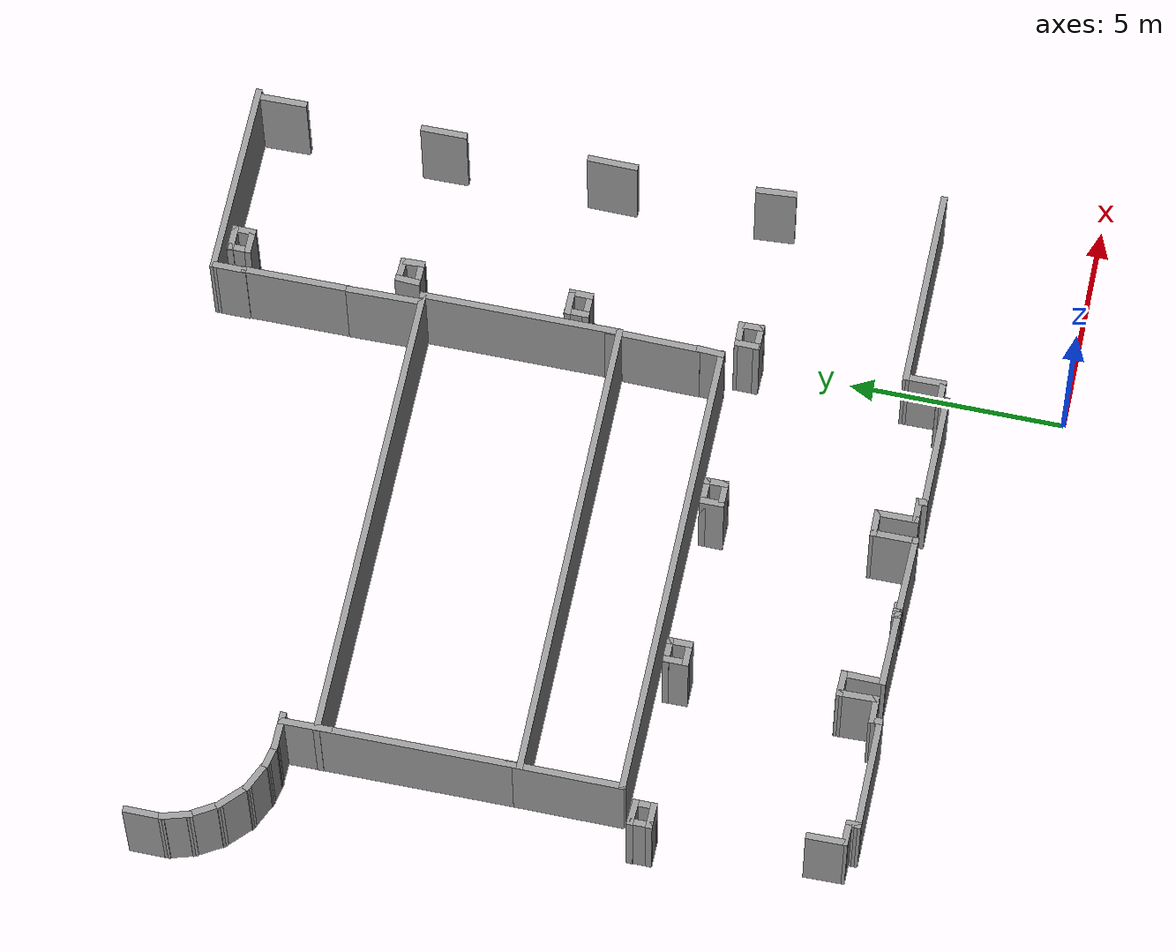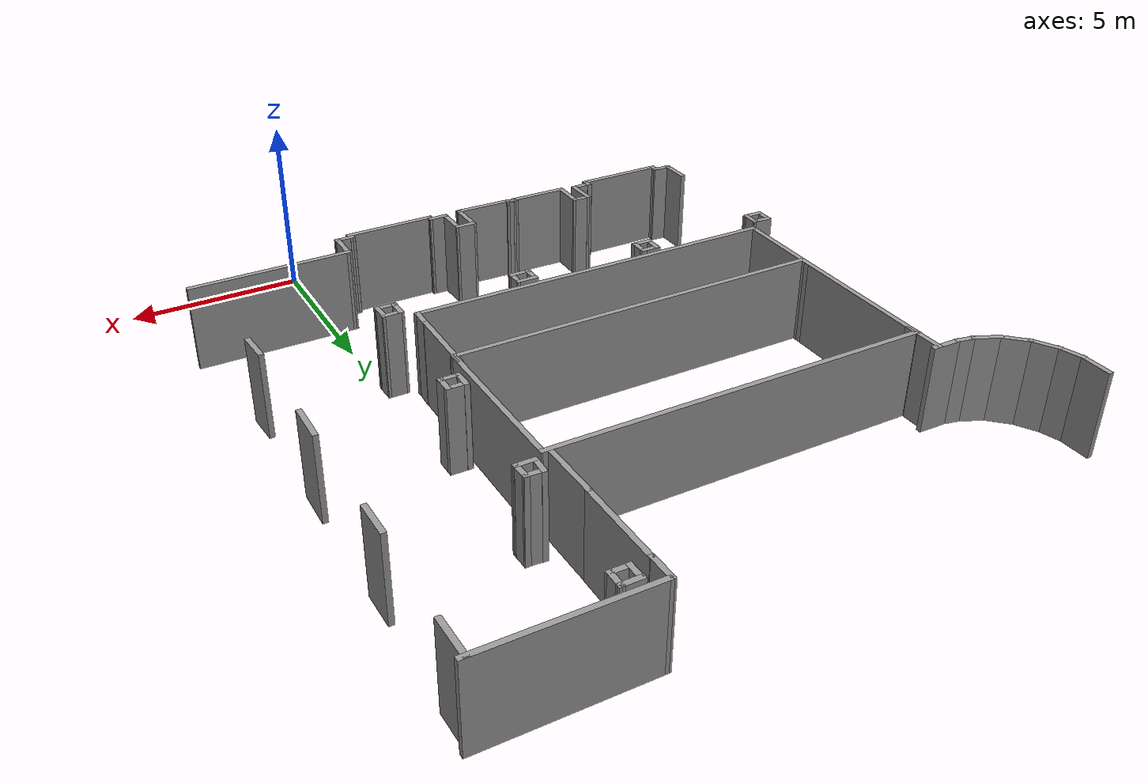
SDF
<sdf version="1.7">
 <model name="TD1-Mapa">
  <pose>-6.249136 -5.50363 0 0 -0 0</pose>
  <link name="Wall_366">
   <collision name="Wall_366_Collision">
    <geometry><box><size>0.9478333 0.15 2.5</size></box></geometry>
    <pose>0 0 1.25 0 -0 0</pose>
   </collision>
   <visual name="Wall_366_Visual">
    <pose>0 0 1.25 0 -0 0</pose>
    <geometry><box><size>0.9478333 0.15 2.5</size></box></geometry>
    <material>
     <script><uri>file://media/materials/scripts/gazebo.material</uri><name>Gazebo/Grey</name></script>
     <ambient>1 1 1 1</ambient>
    </material>
    <meta><layer>0</layer></meta>
   </visual>
   <pose>-5.658134 8.755935 0 0 -0 -1.555137</pose>
  </link>
  <link name="Wall_367">
   <collision name="Wall_367_Collision">
    <geometry><box><size>0.6051373 0.15 2.5</size></box></geometry>
    <pose>0 0 1.25 0 -0 0</pose>
   </collision>
   <visual name="Wall_367_Visual">
    <pose>0 0 1.25 0 -0 0</pose>
    <geometry><box><size>0.6051373 0.15 2.5</size></box></geometry>
    <material>
     <script><uri>file://media/materials/scripts/gazebo.material</uri><name>Gazebo/Grey</name></script>
     <ambient>1 1 1 1</ambient>
    </material>
    <meta><layer>0</layer></meta>
   </visual>
   <pose>-5.42443 8.353933 0 0 -0 -0.0136393</pose>
  </link>
  <link name="Wall_411">
   <collision name="Wall_411_Collision">
    <geometry><box><size>0.9492393 0.15 2.5</size></box></geometry>
    <pose>0 0 1.25 0 -0 0</pose>
   </collision>
   <visual name="Wall_411_Visual">
    <pose>0 0 1.25 0 -0 0</pose>
    <geometry><box><size>0.9492393 0.15 2.5</size></box></geometry>
    <material>
     <script><uri>file://media/materials/scripts/gazebo.material</uri><name>Gazebo/Grey</name></script>
     <ambient>1 1 1 1</ambient>
    </material>
    <meta><layer>0</layer></meta>
   </visual>
   <pose>-8.141139 23.61443 0 0 -0 -1.57083</pose>
  </link>
  <link name="Wall_413">
   <collision name="Wall_413_Collision">
    <geometry><box><size>0.7547323 0.15 2.5</size></box></geometry>
    <pose>0 0 1.25 0 -0 0</pose>
   </collision>
   <visual name="Wall_413_Visual">
    <pose>0 0 1.25 0 -0 0</pose>
    <geometry><box><size>0.7547323 0.15 2.5</size></box></geometry>
    <material>
     <script><uri>file://media/materials/scripts/gazebo.material</uri><name>Gazebo/Grey</name></script>
     <ambient>1 1 1 1</ambient>
    </material>
    <meta><layer>0</layer></meta>
   </visual>
   <pose>-8.056038 22.92463 0 0 -0 -1.285435</pose>
  </link>
  <link name="Wall_414">
   <collision name="Wall_414_Collision">
    <geometry><box><size>0.8370393 0.15 2.5</size></box></geometry>
    <pose>0 0 1.25 0 -0 0</pose>
   </collision>
   <visual name="Wall_414_Visual">
    <pose>0 0 1.25 0 -0 0</pose>
    <geometry><box><size>0.8370393 0.15 2.5</size></box></geometry>
    <material>
     <script><uri>file://media/materials/scripts/gazebo.material</uri><name>Gazebo/Grey</name></script>
     <ambient>1 1 1 1</ambient>
    </material>
    <meta><layer>0</layer></meta>
   </visual>
   <pose>-7.796535 22.33853 0 0 -0 -1.038239</pose>
  </link>
  <link name="Wall_415">
   <collision name="Wall_415_Collision">
    <geometry><box><size>0.8901333 0.15 2.5</size></box></geometry>
    <pose>0 0 1.25 0 -0 0</pose>
   </collision>
   <visual name="Wall_415_Visual">
    <pose>0 0 1.25 0 -0 0</pose>
    <geometry><box><size>0.8901333 0.15 2.5</size></box></geometry>
    <material>
     <script><uri>file://media/materials/scripts/gazebo.material</uri><name>Gazebo/Grey</name></script>
     <ambient>1 1 1 1</ambient>
    </material>
    <meta><layer>0</layer></meta>
   </visual>
   <pose>-7.355232 21.78623 0 0 -0 -0.7651393</pose>
  </link>
  <link name="Wall_416">
   <collision name="Wall_416_Collision">
    <geometry><box><size>0.83333 0.15 2.5</size></box></geometry>
    <pose>0 0 1.25 0 -0 0</pose>
   </collision>
   <visual name="Wall_416_Visual">
    <pose>0 0 1.25 0 -0 0</pose>
    <geometry><box><size>0.83333 0.15 2.5</size></box></geometry>
    <material>
     <script><uri>file://media/materials/scripts/gazebo.material</uri><name>Gazebo/Grey</name></script>
     <ambient>1 1 1 1</ambient>
    </material>
    <meta><layer>0</layer></meta>
   </visual>
   <pose>-6.779132 21.38453 0 0 -0 -0.43193433</pose>
  </link>
  <link name="Wall_417">
   <collision name="Wall_417_Collision">
    <geometry><box><size>0.6092313 0.15 2.5</size></box></geometry>
    <pose>0 0 1.25 0 -0 0</pose>
   </collision>
   <visual name="Wall_417_Visual">
    <pose>0 0 1.25 0 -0 0</pose>
    <geometry><box><size>0.6092313 0.15 2.5</size></box></geometry>
    <material>
     <script><uri>file://media/materials/scripts/gazebo.material</uri><name>Gazebo/Grey</name></script>
     <ambient>1 1 1 1</ambient>
    </material>
    <meta><layer>0</layer></meta>
   </visual>
   <pose>-6.245331 21.19163 0 0 -0 -0.2086383</pose>
  </link>
  <link name="Wall_418">
   <collision name="Wall_418_Collision">
    <geometry><box><size>0.900539 0.15 2.5</size></box></geometry>
    <pose>0 0 1.25 0 -0 0</pose>
   </collision>
   <visual name="Wall_418_Visual">
    <pose>0 0 1.25 0 -0 0</pose>
    <geometry><box><size>0.900539 0.15 2.5</size></box></geometry>
    <material>
     <script><uri>file://media/materials/scripts/gazebo.material</uri><name>Gazebo/Grey</name></script>
     <ambient>1 1 1 1</ambient>
    </material>
    <meta><layer>0</layer></meta>
   </visual>
   <pose>-5.645432 21.13873 0 0 -0 -0.0140383</pose>
  </link>
  <link name="Wall_420">
   <collision name="Wall_420_Collision">
    <geometry><box><size>0.6119373 0.15 2.5</size></box></geometry>
    <pose>0 0 1.25 0 -0 0</pose>
   </collision>
   <visual name="Wall_420_Visual">
    <pose>0 0 1.25 0 -0 0</pose>
    <geometry><box><size>0.6119373 0.15 2.5</size></box></geometry>
    <material>
     <script><uri>file://media/materials/scripts/gazebo.material</uri><name>Gazebo/Grey</name></script>
     <ambient>1 1 1 1</ambient>
    </material>
    <meta><layer>0</layer></meta>
   </visual>
   <pose>-5.913039 13.06943 0 0 -0 -0.0525383</pose>
  </link>
  <link name="Wall_421">
   <collision name="Wall_421_Collision">
    <geometry><box><size>0.5633313 0.15 2.5</size></box></geometry>
    <pose>0 0 1.25 0 -0 0</pose>
   </collision>
   <visual name="Wall_421_Visual">
    <pose>0 0 1.25 0 -0 0</pose>
    <geometry><box><size>0.5633313 0.15 2.5</size></box></geometry>
    <material>
     <script><uri>file://media/materials/scripts/gazebo.material</uri><name>Gazebo/Grey</name></script>
     <ambient>1 1 1 1</ambient>
    </material>
    <meta><layer>0</layer></meta>
   </visual>
   <pose>-5.682132 12.85063 0 0 -0 -1.57083</pose>
  </link>
  <link name="Wall_422">
   <collision name="Wall_422_Collision">
    <geometry><box><size>0.6058393 0.15 2.5</size></box></geometry>
    <pose>0 0 1.25 0 -0 0</pose>
   </collision>
   <visual name="Wall_422_Visual">
    <pose>0 0 1.25 0 -0 0</pose>
    <geometry><box><size>0.6058393 0.15 2.5</size></box></geometry>
    <material>
     <script><uri>file://media/materials/scripts/gazebo.material</uri><name>Gazebo/Grey</name></script>
     <ambient>1 1 1 1</ambient>
    </material>
    <meta><layer>0</layer></meta>
   </visual>
   <pose>-5.910035 12.64693 0 0 -0 3.128236</pose>
  </link>
  <link name="Wall_423">
   <collision name="Wall_423_Collision">
    <geometry><box><size>0.5208313 0.15 2.5</size></box></geometry>
    <pose>0 0 1.25 0 -0 0</pose>
   </collision>
   <visual name="Wall_423_Visual">
    <pose>0 0 1.25 0 -0 0</pose>
    <geometry><box><size>0.5208313 0.15 2.5</size></box></geometry>
    <material>
     <script><uri>file://media/materials/scripts/gazebo.material</uri><name>Gazebo/Grey</name></script>
     <ambient>1 1 1 1</ambient>
    </material>
    <meta><layer>0</layer></meta>
   </visual>
   <pose>-6.134934 12.83543 0 0 -0 1.587139</pose>
  </link>
  <link name="Wall_425">
   <collision name="Wall_425_Collision">
    <geometry><box><size>0.5999343 0.15 2.5</size></box></geometry>
    <pose>0 0 1.25 0 -0 0</pose>
   </collision>
   <visual name="Wall_425_Visual">
    <pose>0 0 1.25 0 -0 0</pose>
    <geometry><box><size>0.5999343 0.15 2.5</size></box></geometry>
    <material>
     <script><uri>file://media/materials/scripts/gazebo.material</uri><name>Gazebo/Grey</name></script>
     <ambient>1 1 1 1</ambient>
    </material>
    <meta><layer>0</layer></meta>
   </visual>
   <pose>-1.986632 13.08763 0 0 -0 0</pose>
  </link>
  <link name="Wall_426">
   <collision name="Wall_426_Collision">
    <geometry><box><size>0.5937343 0.15 2.5</size></box></geometry>
    <pose>0 0 1.25 0 -0 0</pose>
   </collision>
   <visual name="Wall_426_Visual">
    <pose>0 0 1.25 0 -0 0</pose>
    <geometry><box><size>0.5937343 0.15 2.5</size></box></geometry>
    <material>
     <script><uri>file://media/materials/scripts/gazebo.material</uri><name>Gazebo/Grey</name></script>
     <ambient>1 1 1 1</ambient>
    </material>
    <meta><layer>0</layer></meta>
   </visual>
   <pose>-1.761733 12.86583 0 0 -0 -1.57083</pose>
  </link>
  <link name="Wall_427">
   <collision name="Wall_427_Collision">
    <geometry><box><size>0.5937303 0.15 2.5</size></box></geometry>
    <pose>0 0 1.25 0 -0 0</pose>
   </collision>
   <visual name="Wall_427_Visual">
    <pose>0 0 1.25 0 -0 0</pose>
    <geometry><box><size>0.5937303 0.15 2.5</size></box></geometry>
    <material>
     <script><uri>file://media/materials/scripts/gazebo.material</uri><name>Gazebo/Grey</name></script>
     <ambient>1 1 1 1</ambient>
    </material>
    <meta><layer>0</layer></meta>
   </visual>
   <pose>-1.983538 12.64393 0 0 -0 3.141539</pose>
  </link>
  <link name="Wall_428">
   <collision name="Wall_428_Collision">
    <geometry><box><size>0.5876323 0.15 2.5</size></box></geometry>
    <pose>0 0 1.25 0 -0 0</pose>
   </collision>
   <visual name="Wall_428_Visual">
    <pose>0 0 1.25 0 -0 0</pose>
    <geometry><box><size>0.5876323 0.15 2.5</size></box></geometry>
    <material>
     <script><uri>file://media/materials/scripts/gazebo.material</uri><name>Gazebo/Grey</name></script>
     <ambient>1 1 1 1</ambient>
    </material>
    <meta><layer>0</layer></meta>
   </visual>
   <pose>-2.205433 12.86273 0 0 -0 1.57083</pose>
  </link>
  <link name="Wall_430">
   <collision name="Wall_430_Collision">
    <geometry><box><size>0.6362343 0.15 2.5</size></box></geometry>
    <pose>0 0 1.25 0 -0 0</pose>
   </collision>
   <visual name="Wall_430_Visual">
    <pose>0 0 1.25 0 -0 0</pose>
    <geometry><box><size>0.6362343 0.15 2.5</size></box></geometry>
    <material>
     <script><uri>file://media/materials/scripts/gazebo.material</uri><name>Gazebo/Grey</name></script>
     <ambient>1 1 1 1</ambient>
    </material>
    <meta><layer>0</layer></meta>
   </visual>
   <pose>1.958038 13.05723 0 0 -0 0</pose>
  </link>
  <link name="Wall_431">
   <collision name="Wall_431_Collision">
    <geometry><box><size>0.569339 0.15 2.5</size></box></geometry>
    <pose>0 0 1.25 0 -0 0</pose>
   </collision>
   <visual name="Wall_431_Visual">
    <pose>0 0 1.25 0 -0 0</pose>
    <geometry><box><size>0.569339 0.15 2.5</size></box></geometry>
    <material>
     <script><uri>file://media/materials/scripts/gazebo.material</uri><name>Gazebo/Grey</name></script>
     <ambient>1 1 1 1</ambient>
    </material>
    <meta><layer>0</layer></meta>
   </visual>
   <pose>2.204234 12.84753 0 0 -0 -1.556331</pose>
  </link>
  <link name="Wall_432">
   <collision name="Wall_432_Collision">
    <geometry><box><size>0.6423323 0.15 2.5</size></box></geometry>
    <pose>0 0 1.25 0 -0 0</pose>
   </collision>
   <visual name="Wall_432_Visual">
    <pose>0 0 1.25 0 -0 0</pose>
    <geometry><box><size>0.6423323 0.15 2.5</size></box></geometry>
    <material>
     <script><uri>file://media/materials/scripts/gazebo.material</uri><name>Gazebo/Grey</name></script>
     <ambient>1 1 1 1</ambient>
    </material>
    <meta><layer>0</layer></meta>
   </visual>
   <pose>1.961132 12.63783 0 0 -0 3.141539</pose>
  </link>
  <link name="Wall_433">
   <collision name="Wall_433_Collision">
    <geometry><box><size>0.5633353 0.15 2.5</size></box></geometry>
    <pose>0 0 1.25 0 -0 0</pose>
   </collision>
   <visual name="Wall_433_Visual">
    <pose>0 0 1.25 0 -0 0</pose>
    <geometry><box><size>0.5633353 0.15 2.5</size></box></geometry>
    <material>
     <script><uri>file://media/materials/scripts/gazebo.material</uri><name>Gazebo/Grey</name></script>
     <ambient>1 1 1 1</ambient>
    </material>
    <meta><layer>0</layer></meta>
   </visual>
   <pose>1.714935 12.84453 0 0 -0 1.57083</pose>
  </link>
  <link name="Wall_435">
   <collision name="Wall_435_Collision">
    <geometry><box><size>0.56243 0.15 2.5</size></box></geometry>
    <pose>0 0 1.25 0 -0 0</pose>
   </collision>
   <visual name="Wall_435_Visual">
    <pose>0 0 1.25 0 -0 0</pose>
    <geometry><box><size>0.56243 0.15 2.5</size></box></geometry>
    <material>
     <script><uri>file://media/materials/scripts/gazebo.material</uri><name>Gazebo/Grey</name></script>
     <ambient>1 1 1 1</ambient>
    </material>
    <meta><layer>0</layer></meta>
   </visual>
   <pose>5.681732 12.854 0 0 -0 1.57083</pose>
  </link>
  <link name="Wall_436">
   <collision name="Wall_436_Collision">
    <geometry><box><size>0.6045353 0.15 2.5</size></box></geometry>
    <pose>0 0 1.25 0 -0 0</pose>
   </collision>
   <visual name="Wall_436_Visual">
    <pose>0 0 1.25 0 -0 0</pose>
    <geometry><box><size>0.6045353 0.15 2.5</size></box></geometry>
    <material>
     <script><uri>file://media/materials/scripts/gazebo.material</uri><name>Gazebo/Grey</name></script>
     <ambient>1 1 1 1</ambient>
    </material>
    <meta><layer>0</layer></meta>
   </visual>
   <pose>5.908839 13.06373 0 0 -0 0.0153383</pose>
  </link>
  <link name="Wall_437">
   <collision name="Wall_437_Collision">
    <geometry><box><size>0.6043393 0.15 2.5</size></box></geometry>
    <pose>0 0 1.25 0 -0 0</pose>
   </collision>
   <visual name="Wall_437_Visual">
    <pose>0 0 1.25 0 -0 0</pose>
    <geometry><box><size>0.6043393 0.15 2.5</size></box></geometry>
    <material>
     <script><uri>file://media/materials/scripts/gazebo.material</uri><name>Gazebo/Grey</name></script>
     <ambient>1 1 1 1</ambient>
    </material>
    <meta><layer>0</layer></meta>
   </visual>
   <pose>6.143035 12.84013 0 0 -0 -1.540034</pose>
  </link>
  <link name="Wall_438">
   <collision name="Wall_438_Collision">
    <geometry><box><size>0.625336 0.15 2.5</size></box></geometry>
    <pose>0 0 1.25 0 -0 0</pose>
   </collision>
   <visual name="Wall_438_Visual">
    <pose>0 0 1.25 0 -0 0</pose>
    <geometry><box><size>0.625336 0.15 2.5</size></box></geometry>
    <material>
     <script><uri>file://media/materials/scripts/gazebo.material</uri><name>Gazebo/Grey</name></script>
     <ambient>1 1 1 1</ambient>
    </material>
    <meta><layer>0</layer></meta>
   </visual>
   <pose>5.912338 12.61643 0 0 -0 3.126839</pose>
  </link>
  <link name="Wall_440">
   <collision name="Wall_440_Collision">
    <geometry><box><size>10.835 0.15 2.5</size></box></geometry>
    <pose>0 0 1.25 0 -0 0</pose>
   </collision>
   <visual name="Wall_440_Visual">
    <pose>0 0 1.25 0 -0 0</pose>
    <geometry><box><size>10.835 0.15 2.5</size></box></geometry>
    <material>
     <script><uri>file://media/materials/scripts/gazebo.material</uri><name>Gazebo/Grey</name></script>
     <ambient>1 1 1 1</ambient>
    </material>
    <meta><layer>0</layer></meta>
   </visual>
   <pose>-0.0021363 13.39163 0 0 -0 -0.0039343</pose>
  </link>
  <link name="Wall_441">
   <collision name="Wall_441_Collision">
    <geometry><box><size>0.6569303 0.15 2.5</size></box></geometry>
    <pose>0 0 1.25 0 -0 0</pose>
   </collision>
   <visual name="Wall_441_Visual">
    <pose>0 0 1.25 0 -0 0</pose>
    <geometry><box><size>0.6569303 0.15 2.5</size></box></geometry>
    <material>
     <script><uri>file://media/materials/scripts/gazebo.material</uri><name>Gazebo/Grey</name></script>
     <ambient>1 1 1 1</ambient>
    </material>
    <meta><layer>0</layer></meta>
   </visual>
   <pose>5.340238 13.62353 0 0 -0 1.51533</pose>
  </link>
  <link name="Wall_443">
   <collision name="Wall_443_Collision">
    <geometry><box><size>0.3513303 0.15 2.5</size></box></geometry>
    <pose>0 0 1.25 0 -0 0</pose>
   </collision>
   <visual name="Wall_443_Visual">
    <pose>0 0 1.25 0 -0 0</pose>
    <geometry><box><size>0.3513303 0.15 2.5</size></box></geometry>
    <material>
     <script><uri>file://media/materials/scripts/gazebo.material</uri><name>Gazebo/Grey</name></script>
     <ambient>1 1 1 1</ambient>
    </material>
    <meta><layer>0</layer></meta>
   </visual>
   <pose>-5.198236 8.250137 0 0 -0 -1.584238</pose>
  </link>
  <link name="Wall_444">
   <collision name="Wall_444_Collision">
    <geometry><box><size>2.659038 0.15 2.5</size></box></geometry>
    <pose>0 0 1.25 0 -0 0</pose>
   </collision>
   <visual name="Wall_444_Visual">
    <pose>0 0 1.25 0 -0 0</pose>
    <geometry><box><size>2.659038 0.15 2.5</size></box></geometry>
    <material>
     <script><uri>file://media/materials/scripts/gazebo.material</uri><name>Gazebo/Grey</name></script>
     <ambient>1 1 1 1</ambient>
    </material>
    <meta><layer>0</layer></meta>
   </visual>
   <pose>-3.945038 8.149533 0 0 -0 0</pose>
  </link>
  <link name="Wall_445">
   <collision name="Wall_445_Collision">
    <geometry><box><size>0.3169353 0.15 2.5</size></box></geometry>
    <pose>0 0 1.25 0 -0 0</pose>
   </collision>
   <visual name="Wall_445_Visual">
    <pose>0 0 1.25 0 -0 0</pose>
    <geometry><box><size>0.3169353 0.15 2.5</size></box></geometry>
    <material>
     <script><uri>file://media/materials/scripts/gazebo.material</uri><name>Gazebo/Grey</name></script>
     <ambient>1 1 1 1</ambient>
    </material>
    <meta><layer>0</layer></meta>
   </visual>
   <pose>-2.694031 8.242933 0 0 -0 1.612434</pose>
  </link>
  <link name="Wall_446">
   <collision name="Wall_446_Collision">
    <geometry><box><size>0.6574323 0.15 2.5</size></box></geometry>
    <pose>0 0 1.25 0 -0 0</pose>
   </collision>
   <visual name="Wall_446_Visual">
    <pose>0 0 1.25 0 -0 0</pose>
    <geometry><box><size>0.6574323 0.15 2.5</size></box></geometry>
    <material>
     <script><uri>file://media/materials/scripts/gazebo.material</uri><name>Gazebo/Grey</name></script>
     <ambient>1 1 1 1</ambient>
    </material>
    <meta><layer>0</layer></meta>
   </visual>
   <pose>-2.44383 8.323238 0 0 -0 0.027339</pose>
  </link>
  <link name="Wall_447">
   <collision name="Wall_447_Collision">
    <geometry><box><size>0.9706313 0.15 2.5</size></box></geometry>
    <pose>0 0 1.25 0 -0 0</pose>
   </collision>
   <visual name="Wall_447_Visual">
    <pose>0 0 1.25 0 -0 0</pose>
    <geometry><box><size>0.9706313 0.15 2.5</size></box></geometry>
    <material>
     <script><uri>file://media/materials/scripts/gazebo.material</uri><name>Gazebo/Grey</name></script>
     <ambient>1 1 1 1</ambient>
    </material>
    <meta><layer>0</layer></meta>
   </visual>
   <pose>-2.200533 8.740331 0 0 -0 1.596231</pose>
  </link>
  <link name="Wall_448">
   <collision name="Wall_448_Collision">
    <geometry><box><size>0.6157323 0.15 2.5</size></box></geometry>
    <pose>0 0 1.25 0 -0 0</pose>
   </collision>
   <visual name="Wall_448_Visual">
    <pose>0 0 1.25 0 -0 0</pose>
    <geometry><box><size>0.6157323 0.15 2.5</size></box></geometry>
    <material>
     <script><uri>file://media/materials/scripts/gazebo.material</uri><name>Gazebo/Grey</name></script>
     <ambient>1 1 1 1</ambient>
    </material>
    <meta><layer>0</layer></meta>
   </visual>
   <pose>-1.978132 9.14693 0 0 -0 -0.0149323</pose>
  </link>
  <link name="Wall_449">
   <collision name="Wall_449_Collision">
    <geometry><box><size>1.032732 0.15 2.5</size></box></geometry>
    <pose>0 0 1.25 0 -0 0</pose>
   </collision>
   <visual name="Wall_449_Visual">
    <pose>0 0 1.25 0 -0 0</pose>
    <geometry><box><size>1.032732 0.15 2.5</size></box></geometry>
    <material>
     <script><uri>file://media/materials/scripts/gazebo.material</uri><name>Gazebo/Grey</name></script>
     <ambient>1 1 1 1</ambient>
    </material>
    <meta><layer>0</layer></meta>
   </visual>
   <pose>-1.748736 8.702038 0 0 -0 -1.578637</pose>
  </link>
  <link name="Wall_450">
   <collision name="Wall_450_Collision">
    <geometry><box><size>1.790636 0.15 2.5</size></box></geometry>
    <pose>0 0 1.25 0 -0 0</pose>
   </collision>
   <visual name="Wall_450_Visual">
    <pose>0 0 1.25 0 -0 0</pose>
    <geometry><box><size>1.790636 0.15 2.5</size></box></geometry>
    <material>
     <script><uri>file://media/materials/scripts/gazebo.material</uri><name>Gazebo/Grey</name></script>
     <ambient>1 1 1 1</ambient>
    </material>
    <meta><layer>0</layer></meta>
   </visual>
   <pose>-0.9320393 8.250331 0 0 -0 -0.0127313</pose>
  </link>
  <link name="Wall_451">
   <collision name="Wall_451_Collision">
    <geometry><box><size>0.2056303 0.15 2.5</size></box></geometry>
    <pose>0 0 1.25 0 -0 0</pose>
   </collision>
   <visual name="Wall_451_Visual">
    <pose>0 0 1.25 0 -0 0</pose>
    <geometry><box><size>0.2056303 0.15 2.5</size></box></geometry>
    <material>
     <script><uri>file://media/materials/scripts/gazebo.material</uri><name>Gazebo/Grey</name></script>
     <ambient>1 1 1 1</ambient>
    </material>
    <meta><layer>0</layer></meta>
   </visual>
   <pose>-0.1119343 8.267638 0 0 -0 1.57083</pose>
  </link>
  <link name="Wall_452">
   <collision name="Wall_452_Collision">
    <geometry><box><size>0.3655373 0.15 2.5</size></box></geometry>
    <pose>0 0 1.25 0 -0 0</pose>
   </collision>
   <visual name="Wall_452_Visual">
    <pose>0 0 1.25 0 -0 0</pose>
    <geometry><box><size>0.3655373 0.15 2.5</size></box></geometry>
    <material>
     <script><uri>file://media/materials/scripts/gazebo.material</uri><name>Gazebo/Grey</name></script>
     <ambient>1 1 1 1</ambient>
    </material>
    <meta><layer>0</layer></meta>
   </visual>
   <pose>-0.0042313 8.292031 0 0 -0 -0.0322343</pose>
  </link>
  <link name="Wall_453">
   <collision name="Wall_453_Collision">
    <geometry><box><size>0.2060333 0.15 2.5</size></box></geometry>
    <pose>0 0 1.25 0 -0 0</pose>
   </collision>
   <visual name="Wall_453_Visual">
    <pose>0 0 1.25 0 -0 0</pose>
    <geometry><box><size>0.2060333 0.15 2.5</size></box></geometry>
    <material>
     <script><uri>file://media/materials/scripts/gazebo.material</uri><name>Gazebo/Grey</name></script>
     <ambient>1 1 1 1</ambient>
    </material>
    <meta><layer>0</layer></meta>
   </visual>
   <pose>0.1035313 8.260733 0 0 -0 -1.57083</pose>
  </link>
  <link name="Wall_454">
   <collision name="Wall_454_Collision">
    <geometry><box><size>1.776736 0.15 2.5</size></box></geometry>
    <pose>0 0 1.25 0 -0 0</pose>
   </collision>
   <visual name="Wall_454_Visual">
    <pose>0 0 1.25 0 -0 0</pose>
    <geometry><box><size>1.776736 0.15 2.5</size></box></geometry>
    <material>
     <script><uri>file://media/materials/scripts/gazebo.material</uri><name>Gazebo/Grey</name></script>
     <ambient>1 1 1 1</ambient>
    </material>
    <meta><layer>0</layer></meta>
   </visual>
   <pose>0.9167303 8.215535 0 0 -0 -0.0213363</pose>
  </link>
  <link name="Wall_455">
   <collision name="Wall_455_Collision">
    <geometry><box><size>1.102233 0.15 2.5</size></box></geometry>
    <pose>0 0 1.25 0 -0 0</pose>
   </collision>
   <visual name="Wall_455_Visual">
    <pose>0 0 1.25 0 -0 0</pose>
    <geometry><box><size>1.102233 0.15 2.5</size></box></geometry>
    <material>
     <script><uri>file://media/materials/scripts/gazebo.material</uri><name>Gazebo/Grey</name></script>
     <ambient>1 1 1 1</ambient>
    </material>
    <meta><layer>0</layer></meta>
   </visual>
   <pose>1.726432 8.674238 0 0 -0 1.57813</pose>
  </link>
  <link name="Wall_456">
   <collision name="Wall_456_Collision">
    <geometry><box><size>0.6435323 0.15 2.5</size></box></geometry>
    <pose>0 0 1.25 0 -0 0</pose>
   </collision>
   <visual name="Wall_456_Visual">
    <pose>0 0 1.25 0 -0 0</pose>
    <geometry><box><size>0.6435323 0.15 2.5</size></box></geometry>
    <material>
     <script><uri>file://media/materials/scripts/gazebo.material</uri><name>Gazebo/Grey</name></script>
     <ambient>1 1 1 1</ambient>
    </material>
    <meta><layer>0</layer></meta>
   </visual>
   <pose>1.969639 9.153835 0 0 -0 0.0140383</pose>
  </link>
  <link name="Wall_457">
   <collision name="Wall_457_Collision">
    <geometry><box><size>1.025836 0.15 2.5</size></box></geometry>
    <pose>0 0 1.25 0 -0 0</pose>
   </collision>
   <visual name="Wall_457_Visual">
    <pose>0 0 1.25 0 -0 0</pose>
    <geometry><box><size>1.025836 0.15 2.5</size></box></geometry>
    <material>
     <script><uri>file://media/materials/scripts/gazebo.material</uri><name>Gazebo/Grey</name></script>
     <ambient>1 1 1 1</ambient>
    </material>
    <meta><layer>0</layer></meta>
   </visual>
   <pose>2.223337 8.719435 0 0 -0 -1.554932</pose>
  </link>
  <link name="Wall_458">
   <collision name="Wall_458_Collision">
    <geometry><box><size>0.6018323 0.15 2.5</size></box></geometry>
    <pose>0 0 1.25 0 -0 0</pose>
   </collision>
   <visual name="Wall_458_Visual">
    <pose>0 0 1.25 0 -0 0</pose>
    <geometry><box><size>0.6018323 0.15 2.5</size></box></geometry>
    <material>
     <script><uri>file://media/materials/scripts/gazebo.material</uri><name>Gazebo/Grey</name></script>
     <ambient>1 1 1 1</ambient>
    </material>
    <meta><layer>0</layer></meta>
   </visual>
   <pose>2.456231 8.285036 0 0 -0 0.0153383</pose>
  </link>
  <link name="Wall_459">
   <collision name="Wall_459_Collision">
    <geometry><box><size>0.27533 0.15 2.5</size></box></geometry>
    <pose>0 0 1.25 0 -0 0</pose>
   </collision>
   <visual name="Wall_459_Visual">
    <pose>0 0 1.25 0 -0 0</pose>
    <geometry><box><size>0.27533 0.15 2.5</size></box></geometry>
    <material>
     <script><uri>file://media/materials/scripts/gazebo.material</uri><name>Gazebo/Grey</name></script>
     <ambient>1 1 1 1</ambient>
    </material>
    <meta><layer>0</layer></meta>
   </visual>
   <pose>2.685537 8.225938 0 0 -0 -1.51533</pose>
  </link>
  <link name="Wall_461">
   <collision name="Wall_461_Collision">
    <geometry><box><size>2.718637 0.15 2.5</size></box></geometry>
    <pose>0 0 1.25 0 -0 0</pose>
   </collision>
   <visual name="Wall_461_Visual">
    <pose>0 0 1.25 0 -0 0</pose>
    <geometry><box><size>2.718637 0.15 2.5</size></box></geometry>
    <material>
     <script><uri>file://media/materials/scripts/gazebo.material</uri><name>Gazebo/Grey</name></script>
     <ambient>1 1 1 1</ambient>
    </material>
    <meta><layer>0</layer></meta>
   </visual>
   <pose>3.959934 8.161332 0 0 -0 0</pose>
  </link>
  <link name="Wall_463">
   <collision name="Wall_463_Collision">
    <geometry><box><size>0.2614323 0.15 2.5</size></box></geometry>
    <pose>0 0 1.25 0 -0 0</pose>
   </collision>
   <visual name="Wall_463_Visual">
    <pose>0 0 1.25 0 -0 0</pose>
    <geometry><box><size>0.2614323 0.15 2.5</size></box></geometry>
    <material>
     <script><uri>file://media/materials/scripts/gazebo.material</uri><name>Gazebo/Grey</name></script>
     <ambient>1 1 1 1</ambient>
    </material>
    <meta><layer>0</layer></meta>
   </visual>
   <pose>5.208132 8.252533 0 0 -0 1.633232</pose>
  </link>
  <link name="Wall_464">
   <collision name="Wall_464_Collision">
    <geometry><box><size>0.5878373 0.15 2.5</size></box></geometry>
    <pose>0 0 1.25 0 -0 0</pose>
   </collision>
   <visual name="Wall_464_Visual">
    <pose>0 0 1.25 0 -0 0</pose>
    <geometry><box><size>0.5878373 0.15 2.5</size></box></geometry>
    <material>
     <script><uri>file://media/materials/scripts/gazebo.material</uri><name>Gazebo/Grey</name></script>
     <ambient>1 1 1 1</ambient>
    </material>
    <meta><layer>0</layer></meta>
   </visual>
   <pose>5.423538 8.308133 0 0 -0 0</pose>
  </link>
  <link name="Wall_465">
   <collision name="Wall_465_Collision">
    <geometry><box><size>0.9979373 0.15 2.5</size></box></geometry>
    <pose>0 0 1.25 0 -0 0</pose>
   </collision>
   <visual name="Wall_465_Visual">
    <pose>0 0 1.25 0 -0 0</pose>
    <geometry><box><size>0.9979373 0.15 2.5</size></box></geometry>
    <material>
     <script><uri>file://media/materials/scripts/gazebo.material</uri><name>Gazebo/Grey</name></script>
     <ambient>1 1 1 1</ambient>
    </material>
    <meta><layer>0</layer></meta>
   </visual>
   <pose>5.639034 8.73213 0 0 -0 1.578939</pose>
  </link>
  <link name="Wall_467">
   <collision name="Wall_467_Collision">
    <geometry><box><size>4.69013 0.15 2.5</size></box></geometry>
    <pose>0 0 1.25 0 -0 0</pose>
   </collision>
   <visual name="Wall_467_Visual">
    <pose>0 0 1.25 0 -0 0</pose>
    <geometry><box><size>4.69013 0.15 2.5</size></box></geometry>
    <material>
     <script><uri>file://media/materials/scripts/gazebo.material</uri><name>Gazebo/Grey</name></script>
     <ambient>1 1 1 1</ambient>
    </material>
    <meta><layer>0</layer></meta>
   </visual>
   <pose>7.905632 9.155633 0 0 -0 -0.0001393</pose>
  </link>
  <link name="Wall_469">
   <collision name="Wall_469_Collision">
    <geometry><box><size>0.9488303 0.15 2.5</size></box></geometry>
    <pose>0 0 1.25 0 -0 0</pose>
   </collision>
   <visual name="Wall_469_Visual">
    <pose>0 0 1.25 0 -0 0</pose>
    <geometry><box><size>0.9488303 0.15 2.5</size></box></geometry>
    <material>
     <script><uri>file://media/materials/scripts/gazebo.material</uri><name>Gazebo/Grey</name></script>
     <ambient>1 1 1 1</ambient>
    </material>
    <meta><layer>0</layer></meta>
   </visual>
   <pose>9.572637 12.94923 0 0 -0 -1.500734</pose>
  </link>
  <link name="Wall_486">
   <collision name="Wall_486_Collision">
    <geometry><box><size>4.765537 0.15 2.5</size></box></geometry>
    <pose>0 0 1.25 0 -0 0</pose>
   </collision>
   <visual name="Wall_486_Visual">
    <pose>0 0 1.25 0 -0 0</pose>
    <geometry><box><size>4.765537 0.15 2.5</size></box></geometry>
    <material>
     <script><uri>file://media/materials/scripts/gazebo.material</uri><name>Gazebo/Grey</name></script>
     <ambient>1 1 1 1</ambient>
    </material>
    <meta><layer>0</layer></meta>
   </visual>
   <pose>-5.378134 18.04123 0 0 -0 -1.564737</pose>
  </link>
  <link name="Wall_487">
   <collision name="Wall_487_Collision">
    <geometry><box><size>10.90923 0.15 2.5</size></box></geometry>
    <pose>0 0 1.25 0 -0 0</pose>
   </collision>
   <visual name="Wall_487_Visual">
    <pose>0 0 1.25 0 -0 0</pose>
    <geometry><box><size>10.90923 0.15 2.5</size></box></geometry>
    <material>
     <script><uri>file://media/materials/scripts/gazebo.material</uri><name>Gazebo/Grey</name></script>
     <ambient>1 1 1 1</ambient>
    </material>
    <meta><layer>0</layer></meta>
   </visual>
   <pose>0.0153343 15.74063 0 0 -0 0.0012393</pose>
  </link>
  <link name="Wall_488">
   <collision name="Wall_488_Collision">
    <geometry><box><size>4.717434 0.15 2.5</size></box></geometry>
    <pose>0 0 1.25 0 -0 0</pose>
   </collision>
   <visual name="Wall_488_Visual">
    <pose>0 0 1.25 0 -0 0</pose>
    <geometry><box><size>4.717434 0.15 2.5</size></box></geometry>
    <material>
     <script><uri>file://media/materials/scripts/gazebo.material</uri><name>Gazebo/Grey</name></script>
     <ambient>1 1 1 1</ambient>
    </material>
    <meta><layer>0</layer></meta>
   </visual>
   <pose>5.387937 18.03133 0 0 -0 1.573834</pose>
  </link>
  <link name="Wall_489">
   <collision name="Wall_489_Collision">
    <geometry><box><size>10.92313 0.15 2.5</size></box></geometry>
    <pose>0 0 1.25 0 -0 0</pose>
   </collision>
   <visual name="Wall_489_Visual">
    <pose>0 0 1.25 0 -0 0</pose>
    <geometry><box><size>10.92313 0.15 2.5</size></box></geometry>
    <material>
     <script><uri>file://media/materials/scripts/gazebo.material</uri><name>Gazebo/Grey</name></script>
     <ambient>1 1 1 1</ambient>
    </material>
    <meta><layer>0</layer></meta>
   </visual>
   <pose>-0.0134353 20.32193 0 0 -0 3.14033</pose>
  </link>
  <link name="Wall_494">
   <collision name="Wall_494_Collision">
    <geometry><box><size>2.707738 0.15 2.5</size></box></geometry>
    <pose>0 0 1.25 0 -0 0</pose>
   </collision>
   <visual name="Wall_494_Visual">
    <pose>0 0 1.25 0 -0 0</pose>
    <geometry><box><size>2.707738 0.15 2.5</size></box></geometry>
    <material>
     <script><uri>file://media/materials/scripts/gazebo.material</uri><name>Gazebo/Grey</name></script>
     <ambient>1 1 1 1</ambient>
    </material>
    <meta><layer>0</layer></meta>
   </visual>
   <pose>-5.365139 14.72343 0 0 -0 1.57083</pose>
  </link>
  <link name="Wall_497">
   <collision name="Wall_497_Collision">
    <geometry><box><size>2.21673 0.15 2.5</size></box></geometry>
    <pose>0 0 1.25 0 -0 0</pose>
   </collision>
   <visual name="Wall_497_Visual">
    <pose>0 0 1.25 0 -0 0</pose>
    <geometry><box><size>2.21673 0.15 2.5</size></box></geometry>
    <material>
     <script><uri>file://media/materials/scripts/gazebo.material</uri><name>Gazebo/Grey</name></script>
     <ambient>1 1 1 1</ambient>
    </material>
    <meta><layer>0</layer></meta>
   </visual>
   <pose>5.35583 14.96323 0 0 -0 1.559033</pose>
  </link>
  <link name="Wall_499">
   <collision name="Wall_499_Collision">
    <geometry><box><size>1.220732 0.15 2.5</size></box></geometry>
    <pose>0 0 1.25 0 -0 0</pose>
   </collision>
   <visual name="Wall_499_Visual">
    <pose>0 0 1.25 0 -0 0</pose>
    <geometry><box><size>1.220732 0.15 2.5</size></box></geometry>
    <material>
     <script><uri>file://media/materials/scripts/gazebo.material</uri><name>Gazebo/Grey</name></script>
     <ambient>1 1 1 1</ambient>
    </material>
    <meta><layer>0</layer></meta>
   </visual>
   <pose>-5.395 20.59663 0 0 -0 -1.557831</pose>
  </link>
  <link name="Wall_502">
   <collision name="Wall_502_Collision">
    <geometry><box><size>0.6130343 0.15 2.5</size></box></geometry>
    <pose>0 0 1.25 0 -0 0</pose>
   </collision>
   <visual name="Wall_502_Visual">
    <pose>0 0 1.25 0 -0 0</pose>
    <geometry><box><size>0.6130343 0.15 2.5</size></box></geometry>
    <material>
     <script><uri>file://media/materials/scripts/gazebo.material</uri><name>Gazebo/Grey</name></script>
     <ambient>1 1 1 1</ambient>
    </material>
    <meta><layer>0</layer></meta>
   </visual>
   <pose>5.901533 20.51313 0 0 -0 0</pose>
  </link>
  <link name="Wall_503">
   <collision name="Wall_503_Collision">
    <geometry><box><size>0.5718303 0.15 2.5</size></box></geometry>
    <pose>0 0 1.25 0 -0 0</pose>
   </collision>
   <visual name="Wall_503_Visual">
    <pose>0 0 1.25 0 -0 0</pose>
    <geometry><box><size>0.5718303 0.15 2.5</size></box></geometry>
    <material>
     <script><uri>file://media/materials/scripts/gazebo.material</uri><name>Gazebo/Grey</name></script>
     <ambient>1 1 1 1</ambient>
    </material>
    <meta><layer>0</layer></meta>
   </visual>
   <pose>6.126134 20.72393 0 0 -0 1.603537</pose>
  </link>
  <link name="Wall_504">
   <collision name="Wall_504_Collision">
    <geometry><box><size>0.5858393 0.15 2.5</size></box></geometry>
    <pose>0 0 1.25 0 -0 0</pose>
   </collision>
   <visual name="Wall_504_Visual">
    <pose>0 0 1.25 0 -0 0</pose>
    <geometry><box><size>0.5858393 0.15 2.5</size></box></geometry>
    <material>
     <script><uri>file://media/materials/scripts/gazebo.material</uri><name>Gazebo/Grey</name></script>
     <ambient>1 1 1 1</ambient>
    </material>
    <meta><layer>0</layer></meta>
   </visual>
   <pose>5.901533 20.93813 0 0 -0 3.094031</pose>
  </link>
  <link name="Wall_505">
   <collision name="Wall_505_Collision">
    <geometry><box><size>0.5789393 0.15 2.5</size></box></geometry>
    <pose>0 0 1.25 0 -0 0</pose>
   </collision>
   <visual name="Wall_505_Visual">
    <pose>0 0 1.25 0 -0 0</pose>
    <geometry><box><size>0.5789393 0.15 2.5</size></box></geometry>
    <material>
     <script><uri>file://media/materials/scripts/gazebo.material</uri><name>Gazebo/Grey</name></script>
     <ambient>1 1 1 1</ambient>
    </material>
    <meta><layer>0</layer></meta>
   </visual>
   <pose>5.673436 20.74113 0 0 -0 -1.619135</pose>
  </link>
  <link name="Wall_509">
   <collision name="Wall_509_Collision">
    <geometry><box><size>1.823139 0.15 2.5</size></box></geometry>
    <pose>0 0 1.25 0 -0 0</pose>
   </collision>
   <visual name="Wall_509_Visual">
    <pose>0 0 1.25 0 -0 0</pose>
    <geometry><box><size>1.823139 0.15 2.5</size></box></geometry>
    <material>
     <script><uri>file://media/materials/scripts/gazebo.material</uri><name>Gazebo/Grey</name></script>
     <ambient>1 1 1 1</ambient>
    </material>
    <meta><layer>0</layer></meta>
   </visual>
   <pose>5.193134 21.15583 0 0 -0 1.587332</pose>
  </link>
  <link name="Wall_511">
   <collision name="Wall_511_Collision">
    <geometry><box><size>2.527539 0.15 2.5</size></box></geometry>
    <pose>0 0 1.25 0 -0 0</pose>
   </collision>
   <visual name="Wall_511_Visual">
    <pose>0 0 1.25 0 -0 0</pose>
    <geometry><box><size>2.527539 0.15 2.5</size></box></geometry>
    <material>
     <script><uri>file://media/materials/scripts/gazebo.material</uri><name>Gazebo/Grey</name></script>
     <ambient>1 1 1 1</ambient>
    </material>
    <meta><layer>0</layer></meta>
   </visual>
   <pose>5.179332 23.24613 0 0 -0 1.576631</pose>
  </link>
  <link name="Wall_513">
   <collision name="Wall_513_Collision">
    <geometry><box><size>0.6268363 0.15 2.5</size></box></geometry>
    <pose>0 0 1.25 0 -0 0</pose>
   </collision>
   <visual name="Wall_513_Visual">
    <pose>0 0 1.25 0 -0 0</pose>
    <geometry><box><size>0.6268363 0.15 2.5</size></box></geometry>
    <material>
     <script><uri>file://media/materials/scripts/gazebo.material</uri><name>Gazebo/Grey</name></script>
     <ambient>1 1 1 1</ambient>
    </material>
    <meta><layer>0</layer></meta>
   </visual>
   <pose>5.898631 17.00473 0 0 -0 0</pose>
  </link>
  <link name="Wall_514">
   <collision name="Wall_514_Collision">
    <geometry><box><size>0.5713303 0.15 2.5</size></box></geometry>
    <pose>0 0 1.25 0 -0 0</pose>
   </collision>
   <visual name="Wall_514_Visual">
    <pose>0 0 1.25 0 -0 0</pose>
    <geometry><box><size>0.5713303 0.15 2.5</size></box></geometry>
    <material>
     <script><uri>file://media/materials/scripts/gazebo.material</uri><name>Gazebo/Grey</name></script>
     <ambient>1 1 1 1</ambient>
    </material>
    <meta><layer>0</layer></meta>
   </visual>
   <pose>6.137035 16.794 0 0 -0 -1.57083</pose>
  </link>
  <link name="Wall_515">
   <collision name="Wall_515_Collision">
    <geometry><box><size>0.618932 0.15 2.5</size></box></geometry>
    <pose>0 0 1.25 0 -0 0</pose>
   </collision>
   <visual name="Wall_515_Visual">
    <pose>0 0 1.25 0 -0 0</pose>
    <geometry><box><size>0.618932 0.15 2.5</size></box></geometry>
    <material>
     <script><uri>file://media/materials/scripts/gazebo.material</uri><name>Gazebo/Grey</name></script>
     <ambient>1 1 1 1</ambient>
    </material>
    <meta><layer>0</layer></meta>
   </visual>
   <pose>5.902539 16.58343 0 0 -0 3.141539</pose>
  </link>
  <link name="Wall_516">
   <collision name="Wall_516_Collision">
    <geometry><box><size>0.5791383 0.15 2.5</size></box></geometry>
    <pose>0 0 1.25 0 -0 0</pose>
   </collision>
   <visual name="Wall_516_Visual">
    <pose>0 0 1.25 0 -0 0</pose>
    <geometry><box><size>0.5791383 0.15 2.5</size></box></geometry>
    <material>
     <script><uri>file://media/materials/scripts/gazebo.material</uri><name>Gazebo/Grey</name></script>
     <ambient>1 1 1 1</ambient>
    </material>
    <meta><layer>0</layer></meta>
   </visual>
   <pose>5.668133 16.798 0 0 -0 1.57083</pose>
  </link>
  <link name="Wall_518">
   <collision name="Wall_518_Collision">
    <geometry><box><size>0.8411313 0.15 2.5</size></box></geometry>
    <pose>0 0 1.25 0 -0 0</pose>
   </collision>
   <visual name="Wall_518_Visual">
    <pose>0 0 1.25 0 -0 0</pose>
    <geometry><box><size>0.8411313 0.15 2.5</size></box></geometry>
    <material>
     <script><uri>file://media/materials/scripts/gazebo.material</uri><name>Gazebo/Grey</name></script>
     <ambient>1 1 1 1</ambient>
    </material>
    <meta><layer>0</layer></meta>
   </visual>
   <pose>5.156431 24.81593 0 0 -0 1.57083</pose>
  </link>
  <link name="Wall_519">
   <collision name="Wall_519_Collision">
    <geometry><box><size>4.628433 0.15 2.5</size></box></geometry>
    <pose>0 0 1.25 0 -0 0</pose>
   </collision>
   <visual name="Wall_519_Visual">
    <pose>0 0 1.25 0 -0 0</pose>
    <geometry><box><size>4.628433 0.15 2.5</size></box></geometry>
    <material>
     <script><uri>file://media/materials/scripts/gazebo.material</uri><name>Gazebo/Grey</name></script>
     <ambient>1 1 1 1</ambient>
    </material>
    <meta><layer>0</layer></meta>
   </visual>
   <pose>7.395631 25.15463 0 0 -0 -0.0030383</pose>
  </link>
  <link name="Wall_521">
   <collision name="Wall_521_Collision">
    <geometry><box><size>1.240639 0.15 2.5</size></box></geometry>
    <pose>0 0 1.25 0 -0 0</pose>
   </collision>
   <visual name="Wall_521_Visual">
    <pose>0 0 1.25 0 -0 0</pose>
    <geometry><box><size>1.240639 0.15 2.5</size></box></geometry>
    <material>
     <script><uri>file://media/materials/scripts/gazebo.material</uri><name>Gazebo/Grey</name></script>
     <ambient>1 1 1 1</ambient>
    </material>
    <meta><layer>0</layer></meta>
   </visual>
   <pose>9.533731 24.59943 0 0 -0 -1.554636</pose>
  </link>
  <link name="Wall_528">
   <collision name="Wall_528_Collision">
    <geometry><box><size>1.085334 0.15 2.5</size></box></geometry>
    <pose>0 0 1.25 0 -0 0</pose>
   </collision>
   <visual name="Wall_528_Visual">
    <pose>0 0 1.25 0 -0 0</pose>
    <geometry><box><size>1.085334 0.15 2.5</size></box></geometry>
    <material>
     <script><uri>file://media/materials/scripts/gazebo.material</uri><name>Gazebo/Grey</name></script>
     <ambient>1 1 1 1</ambient>
    </material>
    <meta><layer>0</layer></meta>
   </visual>
   <pose>9.510536 20.73723 0 0 -0 -1.561133</pose>
  </link>
  <link name="Wall_533">
   <collision name="Wall_533_Collision">
    <geometry><box><size>1.184736 0.15 2.5</size></box></geometry>
    <pose>0 0 1.25 0 -0 0</pose>
   </collision>
   <visual name="Wall_533_Visual">
    <pose>0 0 1.25 0 -0 0</pose>
    <geometry><box><size>1.184736 0.15 2.5</size></box></geometry>
    <material>
     <script><uri>file://media/materials/scripts/gazebo.material</uri><name>Gazebo/Grey</name></script>
     <ambient>1 1 1 1</ambient>
    </material>
    <meta><layer>0</layer></meta>
   </visual>
   <pose>9.536937 16.77173 0 0 -0 -1.58093</pose>
  </link>
  <link name="Wall_536">
   <collision name="Wall_536_Collision">
    <geometry><box><size>0.6316383 0.15 2.5</size></box></geometry>
    <pose>0 0 1.25 0 -0 0</pose>
   </collision>
   <visual name="Wall_536_Visual">
    <pose>0 0 1.25 0 -0 0</pose>
    <geometry><box><size>0.6316383 0.15 2.5</size></box></geometry>
    <material>
     <script><uri>file://media/materials/scripts/gazebo.material</uri><name>Gazebo/Grey</name></script>
     <ambient>1 1 1 1</ambient>
    </material>
    <meta><layer>0</layer></meta>
   </visual>
   <pose>5.893131 24.88123 0 0 -0 0</pose>
  </link>
  <link name="Wall_537">
   <collision name="Wall_537_Collision">
    <geometry><box><size>0.5590373 0.15 2.5</size></box></geometry>
    <pose>0 0 1.25 0 -0 0</pose>
   </collision>
   <visual name="Wall_537_Visual">
    <pose>0 0 1.25 0 -0 0</pose>
    <geometry><box><size>0.5590373 0.15 2.5</size></box></geometry>
    <material>
     <script><uri>file://media/materials/scripts/gazebo.material</uri><name>Gazebo/Grey</name></script>
     <ambient>1 1 1 1</ambient>
    </material>
    <meta><layer>0</layer></meta>
   </visual>
   <pose>6.129431 24.67673 0 0 -0 -1.593032</pose>
  </link>
  <link name="Wall_538">
   <collision name="Wall_538_Collision">
    <geometry><box><size>0.6044313 0.15 2.5</size></box></geometry>
    <pose>0 0 1.25 0 -0 0</pose>
   </collision>
   <visual name="Wall_538_Visual">
    <pose>0 0 1.25 0 -0 0</pose>
    <geometry><box><size>0.6044313 0.15 2.5</size></box></geometry>
    <material>
     <script><uri>file://media/materials/scripts/gazebo.material</uri><name>Gazebo/Grey</name></script>
     <ambient>1 1 1 1</ambient>
    </material>
    <meta><layer>0</layer></meta>
   </visual>
   <pose>5.897636 24.47223 0 0 -0 3.141539</pose>
  </link>
  <link name="Wall_539">
   <collision name="Wall_539_Collision">
    <geometry><box><size>0.5407393 0.15 2.5</size></box></geometry>
    <pose>0 0 1.25 0 -0 0</pose>
   </collision>
   <visual name="Wall_539_Visual">
    <pose>0 0 1.25 0 -0 0</pose>
    <geometry><box><size>0.5407393 0.15 2.5</size></box></geometry>
    <material>
     <script><uri>file://media/materials/scripts/gazebo.material</uri><name>Gazebo/Grey</name></script>
     <ambient>1 1 1 1</ambient>
    </material>
    <meta><layer>0</layer></meta>
   </visual>
   <pose>5.670435 24.66763 0 0 -0 1.57083</pose>
  </link>
  <static>1</static>
 </model>
</sdf>
